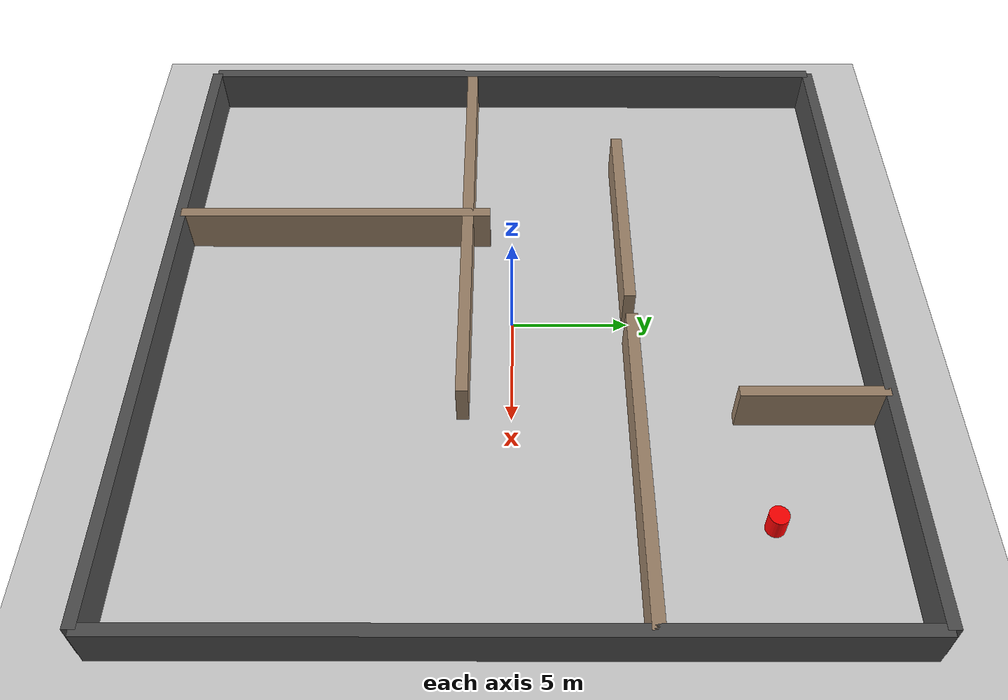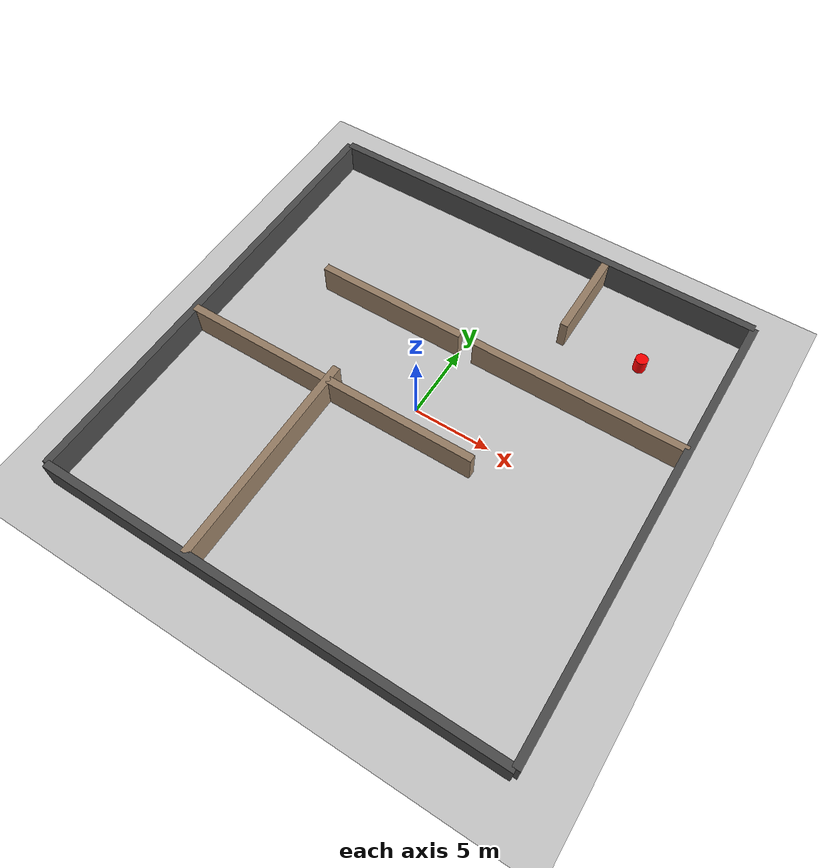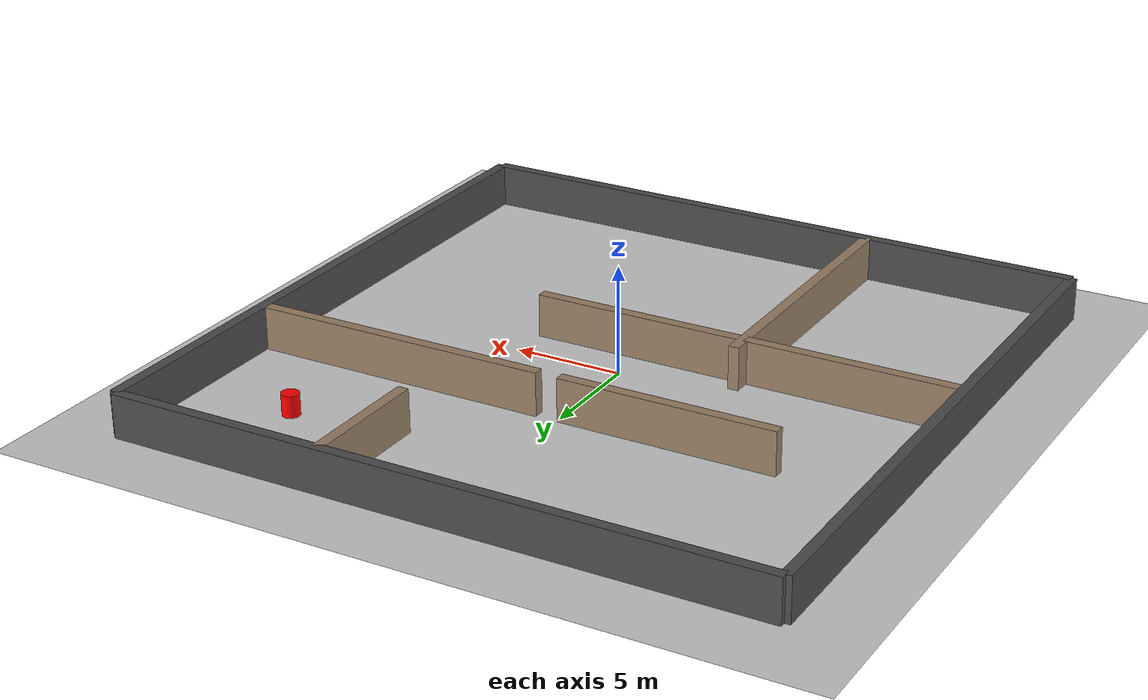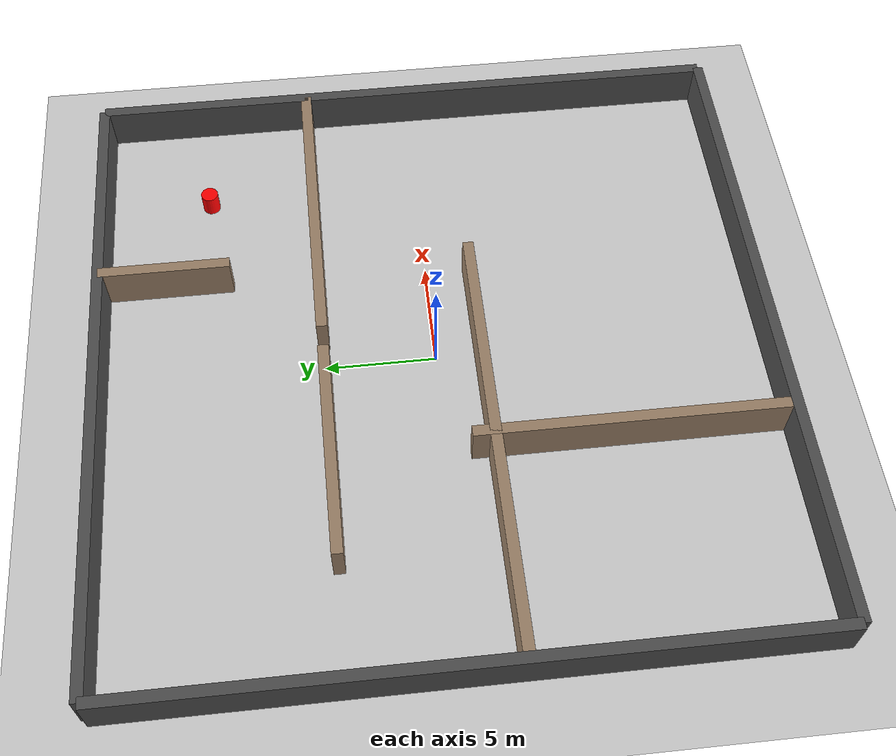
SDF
<?xml version="1.0" ?>
<sdf version="1.8">
  <world name="complex_warehouse">
    <physics name="1ms" type="ignored">
      <max_step_size>0.001</max_step_size>
      <real_time_factor>1.0</real_time_factor>
    </physics>
    <plugin filename="gz-sim-physics-system" name="gz::sim::systems::Physics"/>
    <plugin filename="gz-sim-user-commands-system" name="gz::sim::systems::UserCommands"/>
    <plugin filename="gz-sim-scene-broadcaster-system" name="gz::sim::systems::SceneBroadcaster"/>
    <plugin filename="gz-sim-sensors-system" name="gz::sim::systems::Sensors">
      <render_engine>ogre2</render_engine>
    </plugin>

    <light type="directional" name="sun">
      <cast_shadows>true</cast_shadows>
      <pose>0 0 10 0 0 0</pose>
      <diffuse>0.8 0.8 0.8 1</diffuse>
      <specular>0.2 0.2 0.2 1</specular>
      <direction>-0.5 0.1 -0.9</direction>
    </light>

    <model name="ground_plane">
      <static>true</static>
      <link name="link">
        <collision name="collision"><geometry><plane><normal>0 0 1</normal><size>100 100</size></plane></geometry></collision>
        <visual name="visual">
          <geometry><plane><normal>0 0 1</normal><size>100 100</size></plane></geometry>
          <material><ambient>0.8 0.8 0.8 1</ambient><diffuse>0.8 0.8 0.8 1</diffuse></material>
        </visual>
      </link>
    </model>

    <!-- PAREDES EXTERIORES DEL ALMACÉN (30x30 metros) -->
    <model name="outer_walls">
      <static>true</static>
      <link name="link">
        <visual name="v1"><pose>0 15 1 0 0 0</pose><geometry><box><size>30 0.5 2</size></box></geometry><material><ambient>0.3 0.3 0.3 1</ambient></material></visual>
        <collision name="c1"><pose>0 15 1 0 0 0</pose><geometry><box><size>30 0.5 2</size></box></geometry></collision>

        <visual name="v2"><pose>0 -15 1 0 0 0</pose><geometry><box><size>30 0.5 2</size></box></geometry><material><ambient>0.3 0.3 0.3 1</ambient></material></visual>
        <collision name="c2"><pose>0 -15 1 0 0 0</pose><geometry><box><size>30 0.5 2</size></box></geometry></collision>

        <visual name="v3"><pose>15 0 1 0 0 1.5708</pose><geometry><box><size>30 0.5 2</size></box></geometry><material><ambient>0.3 0.3 0.3 1</ambient></material></visual>
        <collision name="c3"><pose>15 0 1 0 0 1.5708</pose><geometry><box><size>30 0.5 2</size></box></geometry></collision>

        <visual name="v4"><pose>-15 0 1 0 0 1.5708</pose><geometry><box><size>30 0.5 2</size></box></geometry><material><ambient>0.3 0.3 0.3 1</ambient></material></visual>
        <collision name="c4"><pose>-15 0 1 0 0 1.5708</pose><geometry><box><size>30 0.5 2</size></box></geometry></collision>
      </link>
    </model>

    <!-- HABITACIONES Y PASILLOS INTERIORES -->
    <model name="inner_walls">
      <static>true</static>
      <link name="link">
        <!-- Pasillos horizontales -->
        <visual name="v1"><pose>-5 5 1 0 0 0</pose><geometry><box><size>10 0.5 2</size></box></geometry><material><ambient>0.6 0.5 0.4 1</ambient></material></visual>
        <collision name="c1"><pose>-5 5 1 0 0 0</pose><geometry><box><size>10 0.5 2</size></box></geometry></collision>

        <visual name="v2"><pose>8 5 1 0 0 0</pose><geometry><box><size>14 0.5 2</size></box></geometry><material><ambient>0.6 0.5 0.4 1</ambient></material></visual>
        <collision name="c2"><pose>8 5 1 0 0 0</pose><geometry><box><size>14 0.5 2</size></box></geometry></collision>

        <visual name="v3"><pose>-5 -2 1 0 0 0</pose><geometry><box><size>20 0.5 2</size></box></geometry><material><ambient>0.6 0.5 0.4 1</ambient></material></visual>
        <collision name="c3"><pose>-5 -2 1 0 0 0</pose><geometry><box><size>20 0.5 2</size></box></geometry></collision>

        <!-- Paredes verticales formando habitaciones -->
        <!-- FIX: Pared acortada y movida para dejar una "puerta" abierta de 4m hacia el pasillo -->
        <visual name="v4"><pose>5 12 1 0 0 1.5708</pose><geometry><box><size>6 0.5 2</size></box></geometry><material><ambient>0.6 0.5 0.4 1</ambient></material></visual>
        <collision name="c4"><pose>5 12 1 0 0 1.5708</pose><geometry><box><size>6 0.5 2</size></box></geometry></collision>

        <visual name="v5"><pose>-5 -8 1 0 0 1.5708</pose><geometry><box><size>14 0.5 2</size></box></geometry><material><ambient>0.6 0.5 0.4 1</ambient></material></visual>
        <collision name="c5"><pose>-5 -8 1 0 0 1.5708</pose><geometry><box><size>14 0.5 2</size></box></geometry></collision>
      </link>
    </model>

    <!-- OBJETIVO ROJO ESCONDIDO EN UNA HABITACIÓN -->
    <model name="red_cylinder">
      <static>true</static>
      <!-- Está escondido en la habitación superior derecha -->
      <pose>10 10 0.5 0 0 0</pose>
      <link name="link">
        <collision name="collision"><geometry><cylinder><radius>0.4</radius><length>1.0</length></cylinder></geometry></collision>
        <visual name="visual">
          <geometry><cylinder><radius>0.4</radius><length>1.0</length></cylinder></geometry>
          <material><ambient>1 0 0 1</ambient><diffuse>1 0 0 1</diffuse></material>
        </visual>
      </link>
    </model>

  </world>
</sdf>
